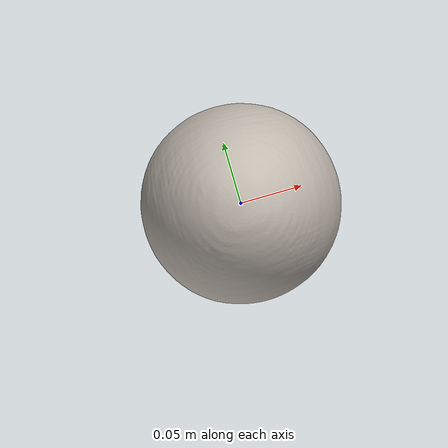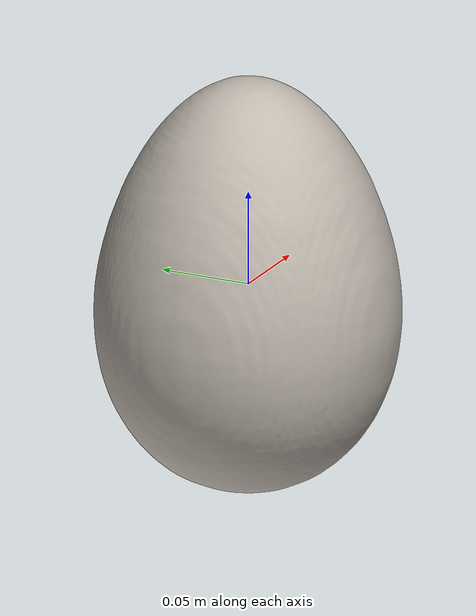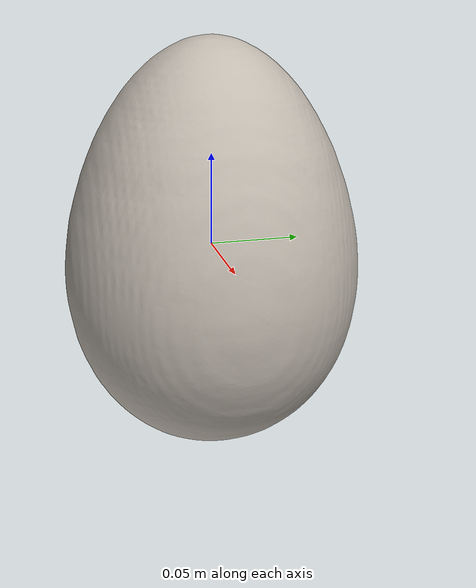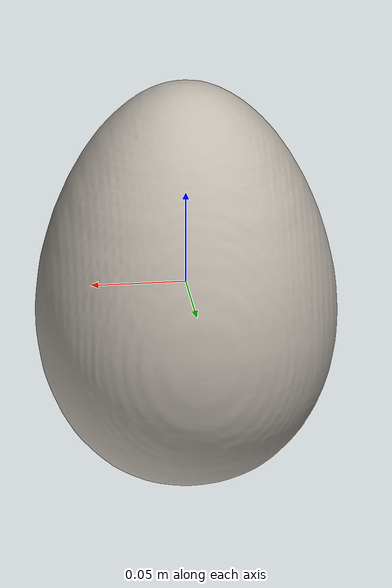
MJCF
<mujoco model="fork_11">
  <asset>
    <mesh file="visual/model_normalized_0.obj" name="model_normalized_0_vis" scale="0.22000000000000003 0.22000000000000003 0.22000000000000003" refquat="0.7071067811865475 0.0 0.0 0.7071067811865476"/>
    <mesh file="visual/model_normalized_1.obj" name="model_normalized_1_vis" scale="0.22000000000000003 0.22000000000000003 0.22000000000000003" refquat="0.7071067811865475 0.0 0.0 0.7071067811865476"/>
    <mesh file="collision/model_normalized_collision_22.obj" name="model_normalized_collision_22._coll" scale="0.22000000000000003 0.22000000000000003 0.22000000000000003" refquat="0.7071067811865475 0.0 0.0 0.7071067811865476"/>
    <mesh file="collision/model_normalized_collision_23.obj" name="model_normalized_collision_23._coll" scale="0.22000000000000003 0.22000000000000003 0.22000000000000003" refquat="0.7071067811865475 0.0 0.0 0.7071067811865476"/>
    <mesh file="collision/model_normalized_collision_21.obj" name="model_normalized_collision_21._coll" scale="0.22000000000000003 0.22000000000000003 0.22000000000000003" refquat="0.7071067811865475 0.0 0.0 0.7071067811865476"/>
    <mesh file="collision/model_normalized_collision_20.obj" name="model_normalized_collision_20._coll" scale="0.22000000000000003 0.22000000000000003 0.22000000000000003" refquat="0.7071067811865475 0.0 0.0 0.7071067811865476"/>
    <mesh file="collision/model_normalized_collision_24.obj" name="model_normalized_collision_24._coll" scale="0.22000000000000003 0.22000000000000003 0.22000000000000003" refquat="0.7071067811865475 0.0 0.0 0.7071067811865476"/>
    <mesh file="collision/model_normalized_collision_30.obj" name="model_normalized_collision_30._coll" scale="0.22000000000000003 0.22000000000000003 0.22000000000000003" refquat="0.7071067811865475 0.0 0.0 0.7071067811865476"/>
    <mesh file="collision/model_normalized_collision_18.obj" name="model_normalized_collision_18._coll" scale="0.22000000000000003 0.22000000000000003 0.22000000000000003" refquat="0.7071067811865475 0.0 0.0 0.7071067811865476"/>
    <mesh file="collision/model_normalized_collision_19.obj" name="model_normalized_collision_19._coll" scale="0.22000000000000003 0.22000000000000003 0.22000000000000003" refquat="0.7071067811865475 0.0 0.0 0.7071067811865476"/>
    <mesh file="collision/model_normalized_collision_31.obj" name="model_normalized_collision_31._coll" scale="0.22000000000000003 0.22000000000000003 0.22000000000000003" refquat="0.7071067811865475 0.0 0.0 0.7071067811865476"/>
    <mesh file="collision/model_normalized_collision_25.obj" name="model_normalized_collision_25._coll" scale="0.22000000000000003 0.22000000000000003 0.22000000000000003" refquat="0.7071067811865475 0.0 0.0 0.7071067811865476"/>
    <mesh file="collision/model_normalized_collision_27.obj" name="model_normalized_collision_27._coll" scale="0.22000000000000003 0.22000000000000003 0.22000000000000003" refquat="0.7071067811865475 0.0 0.0 0.7071067811865476"/>
    <mesh file="collision/model_normalized_collision_26.obj" name="model_normalized_collision_26._coll" scale="0.22000000000000003 0.22000000000000003 0.22000000000000003" refquat="0.7071067811865475 0.0 0.0 0.7071067811865476"/>
    <mesh file="collision/model_normalized_collision_9.obj" name="model_normalized_collision_9._coll" scale="0.22000000000000003 0.22000000000000003 0.22000000000000003" refquat="0.7071067811865475 0.0 0.0 0.7071067811865476"/>
    <mesh file="collision/model_normalized_collision_8.obj" name="model_normalized_collision_8._coll" scale="0.22000000000000003 0.22000000000000003 0.22000000000000003" refquat="0.7071067811865475 0.0 0.0 0.7071067811865476"/>
    <mesh file="collision/model_normalized_collision_6.obj" name="model_normalized_collision_6._coll" scale="0.22000000000000003 0.22000000000000003 0.22000000000000003" refquat="0.7071067811865475 0.0 0.0 0.7071067811865476"/>
    <mesh file="collision/model_normalized_collision_7.obj" name="model_normalized_collision_7._coll" scale="0.22000000000000003 0.22000000000000003 0.22000000000000003" refquat="0.7071067811865475 0.0 0.0 0.7071067811865476"/>
    <mesh file="collision/model_normalized_collision_5.obj" name="model_normalized_collision_5._coll" scale="0.22000000000000003 0.22000000000000003 0.22000000000000003" refquat="0.7071067811865475 0.0 0.0 0.7071067811865476"/>
    <mesh file="collision/model_normalized_collision_4.obj" name="model_normalized_collision_4._coll" scale="0.22000000000000003 0.22000000000000003 0.22000000000000003" refquat="0.7071067811865475 0.0 0.0 0.7071067811865476"/>
    <mesh file="collision/model_normalized_collision_0.obj" name="model_normalized_collision_0._coll" scale="0.22000000000000003 0.22000000000000003 0.22000000000000003" refquat="0.7071067811865475 0.0 0.0 0.7071067811865476"/>
    <mesh file="collision/model_normalized_collision_1.obj" name="model_normalized_collision_1._coll" scale="0.22000000000000003 0.22000000000000003 0.22000000000000003" refquat="0.7071067811865475 0.0 0.0 0.7071067811865476"/>
    <mesh file="collision/model_normalized_collision_3.obj" name="model_normalized_collision_3._coll" scale="0.22000000000000003 0.22000000000000003 0.22000000000000003" refquat="0.7071067811865475 0.0 0.0 0.7071067811865476"/>
    <mesh file="collision/model_normalized_collision_2.obj" name="model_normalized_collision_2._coll" scale="0.22000000000000003 0.22000000000000003 0.22000000000000003" refquat="0.7071067811865475 0.0 0.0 0.7071067811865476"/>
    <mesh file="collision/model_normalized_collision_17.obj" name="model_normalized_collision_17._coll" scale="0.22000000000000003 0.22000000000000003 0.22000000000000003" refquat="0.7071067811865475 0.0 0.0 0.7071067811865476"/>
    <mesh file="collision/model_normalized_collision_16.obj" name="model_normalized_collision_16._coll" scale="0.22000000000000003 0.22000000000000003 0.22000000000000003" refquat="0.7071067811865475 0.0 0.0 0.7071067811865476"/>
    <mesh file="collision/model_normalized_collision_28.obj" name="model_normalized_collision_28._coll" scale="0.22000000000000003 0.22000000000000003 0.22000000000000003" refquat="0.7071067811865475 0.0 0.0 0.7071067811865476"/>
    <mesh file="collision/model_normalized_collision_14.obj" name="model_normalized_collision_14._coll" scale="0.22000000000000003 0.22000000000000003 0.22000000000000003" refquat="0.7071067811865475 0.0 0.0 0.7071067811865476"/>
    <mesh file="collision/model_normalized_collision_15.obj" name="model_normalized_collision_15._coll" scale="0.22000000000000003 0.22000000000000003 0.22000000000000003" refquat="0.7071067811865475 0.0 0.0 0.7071067811865476"/>
    <mesh file="collision/model_normalized_collision_29.obj" name="model_normalized_collision_29._coll" scale="0.22000000000000003 0.22000000000000003 0.22000000000000003" refquat="0.7071067811865475 0.0 0.0 0.7071067811865476"/>
    <mesh file="collision/model_normalized_collision_11.obj" name="model_normalized_collision_11._coll" scale="0.22000000000000003 0.22000000000000003 0.22000000000000003" refquat="0.7071067811865475 0.0 0.0 0.7071067811865476"/>
    <mesh file="collision/model_normalized_collision_10.obj" name="model_normalized_collision_10._coll" scale="0.22000000000000003 0.22000000000000003 0.22000000000000003" refquat="0.7071067811865475 0.0 0.0 0.7071067811865476"/>
    <mesh file="collision/model_normalized_collision_12.obj" name="model_normalized_collision_12._coll" scale="0.22000000000000003 0.22000000000000003 0.22000000000000003" refquat="0.7071067811865475 0.0 0.0 0.7071067811865476"/>
    <mesh file="collision/model_normalized_collision_13.obj" name="model_normalized_collision_13._coll" scale="0.22000000000000003 0.22000000000000003 0.22000000000000003" refquat="0.7071067811865475 0.0 0.0 0.7071067811865476"/>
    <texture type="2d" name="image3" file="visual/image3.png"/>
    <texture type="2d" name="image0" file="visual/image0.png"/>
    <material name="Handle" texture="image3" specular="0.9" shininess="0.85"/>
    <material name="Prongs" texture="image0" specular="0.9" shininess="0.85"/>
  </asset>
  <custom><text name="material_gt" data="metal"/></custom>
  <default>
    <default class="region">
      <geom group="1" conaffinity="0" contype="0" rgba="0 1 0 0"/>
    </default>
  </default>
  <worldbody>
    <body>
      <body name="object">
        <geom solimp="0.998 0.998 0.001" solref="0.001 1" density="100" friction="0.95 0.3 0.1" type="mesh" mesh="model_normalized_0_vis" conaffinity="0" contype="0" group="1" material="Handle"/>
        <geom solimp="0.998 0.998 0.001" solref="0.001 1" density="100" friction="0.95 0.3 0.1" type="mesh" mesh="model_normalized_1_vis" conaffinity="0" contype="0" group="1" material="Prongs"/>
        <geom solimp="0.998 0.998 0.001" solref="0.001 1" density="100" friction="0.95 0.3 0.1" type="mesh" mesh="model_normalized_collision_22._coll" group="0" rgba="0.8 0.8 0.8 0.0"/>
        <geom solimp="0.998 0.998 0.001" solref="0.001 1" density="100" friction="0.95 0.3 0.1" type="mesh" mesh="model_normalized_collision_23._coll" group="0" rgba="0.8 0.8 0.8 0.0"/>
        <geom solimp="0.998 0.998 0.001" solref="0.001 1" density="100" friction="0.95 0.3 0.1" type="mesh" mesh="model_normalized_collision_21._coll" group="0" rgba="0.8 0.8 0.8 0.0"/>
        <geom solimp="0.998 0.998 0.001" solref="0.001 1" density="100" friction="0.95 0.3 0.1" type="mesh" mesh="model_normalized_collision_20._coll" group="0" rgba="0.8 0.8 0.8 0.0"/>
        <geom solimp="0.998 0.998 0.001" solref="0.001 1" density="100" friction="0.95 0.3 0.1" type="mesh" mesh="model_normalized_collision_24._coll" group="0" rgba="0.8 0.8 0.8 0.0"/>
        <geom solimp="0.998 0.998 0.001" solref="0.001 1" density="100" friction="0.95 0.3 0.1" type="mesh" mesh="model_normalized_collision_30._coll" group="0" rgba="0.8 0.8 0.8 0.0"/>
        <geom solimp="0.998 0.998 0.001" solref="0.001 1" density="100" friction="0.95 0.3 0.1" type="mesh" mesh="model_normalized_collision_18._coll" group="0" rgba="0.8 0.8 0.8 0.0"/>
        <geom solimp="0.998 0.998 0.001" solref="0.001 1" density="100" friction="0.95 0.3 0.1" type="mesh" mesh="model_normalized_collision_19._coll" group="0" rgba="0.8 0.8 0.8 0.0"/>
        <geom solimp="0.998 0.998 0.001" solref="0.001 1" density="100" friction="0.95 0.3 0.1" type="mesh" mesh="model_normalized_collision_31._coll" group="0" rgba="0.8 0.8 0.8 0.0"/>
        <geom solimp="0.998 0.998 0.001" solref="0.001 1" density="100" friction="0.95 0.3 0.1" type="mesh" mesh="model_normalized_collision_25._coll" group="0" rgba="0.8 0.8 0.8 0.0"/>
        <geom solimp="0.998 0.998 0.001" solref="0.001 1" density="100" friction="0.95 0.3 0.1" type="mesh" mesh="model_normalized_collision_27._coll" group="0" rgba="0.8 0.8 0.8 0.0"/>
        <geom solimp="0.998 0.998 0.001" solref="0.001 1" density="100" friction="0.95 0.3 0.1" type="mesh" mesh="model_normalized_collision_26._coll" group="0" rgba="0.8 0.8 0.8 0.0"/>
        <geom solimp="0.998 0.998 0.001" solref="0.001 1" density="100" friction="0.95 0.3 0.1" type="mesh" mesh="model_normalized_collision_9._coll" group="0" rgba="0.8 0.8 0.8 0.0"/>
        <geom solimp="0.998 0.998 0.001" solref="0.001 1" density="100" friction="0.95 0.3 0.1" type="mesh" mesh="model_normalized_collision_8._coll" group="0" rgba="0.8 0.8 0.8 0.0"/>
        <geom solimp="0.998 0.998 0.001" solref="0.001 1" density="100" friction="0.95 0.3 0.1" type="mesh" mesh="model_normalized_collision_6._coll" group="0" rgba="0.8 0.8 0.8 0.0"/>
        <geom solimp="0.998 0.998 0.001" solref="0.001 1" density="100" friction="0.95 0.3 0.1" type="mesh" mesh="model_normalized_collision_7._coll" group="0" rgba="0.8 0.8 0.8 0.0"/>
        <geom solimp="0.998 0.998 0.001" solref="0.001 1" density="100" friction="0.95 0.3 0.1" type="mesh" mesh="model_normalized_collision_5._coll" group="0" rgba="0.8 0.8 0.8 0.0"/>
        <geom solimp="0.998 0.998 0.001" solref="0.001 1" density="100" friction="0.95 0.3 0.1" type="mesh" mesh="model_normalized_collision_4._coll" group="0" rgba="0.8 0.8 0.8 0.0"/>
        <geom solimp="0.998 0.998 0.001" solref="0.001 1" density="100" friction="0.95 0.3 0.1" type="mesh" mesh="model_normalized_collision_0._coll" group="0" rgba="0.8 0.8 0.8 0.0"/>
        <geom solimp="0.998 0.998 0.001" solref="0.001 1" density="100" friction="0.95 0.3 0.1" type="mesh" mesh="model_normalized_collision_1._coll" group="0" rgba="0.8 0.8 0.8 0.0"/>
        <geom solimp="0.998 0.998 0.001" solref="0.001 1" density="100" friction="0.95 0.3 0.1" type="mesh" mesh="model_normalized_collision_3._coll" group="0" rgba="0.8 0.8 0.8 0.0"/>
        <geom solimp="0.998 0.998 0.001" solref="0.001 1" density="100" friction="0.95 0.3 0.1" type="mesh" mesh="model_normalized_collision_2._coll" group="0" rgba="0.8 0.8 0.8 0.0"/>
        <geom solimp="0.998 0.998 0.001" solref="0.001 1" density="100" friction="0.95 0.3 0.1" type="mesh" mesh="model_normalized_collision_17._coll" group="0" rgba="0.8 0.8 0.8 0.0"/>
        <geom solimp="0.998 0.998 0.001" solref="0.001 1" density="100" friction="0.95 0.3 0.1" type="mesh" mesh="model_normalized_collision_16._coll" group="0" rgba="0.8 0.8 0.8 0.0"/>
        <geom solimp="0.998 0.998 0.001" solref="0.001 1" density="100" friction="0.95 0.3 0.1" type="mesh" mesh="model_normalized_collision_28._coll" group="0" rgba="0.8 0.8 0.8 0.0"/>
        <geom solimp="0.998 0.998 0.001" solref="0.001 1" density="100" friction="0.95 0.3 0.1" type="mesh" mesh="model_normalized_collision_14._coll" group="0" rgba="0.8 0.8 0.8 0.0"/>
        <geom solimp="0.998 0.998 0.001" solref="0.001 1" density="100" friction="0.95 0.3 0.1" type="mesh" mesh="model_normalized_collision_15._coll" group="0" rgba="0.8 0.8 0.8 0.0"/>
        <geom solimp="0.998 0.998 0.001" solref="0.001 1" density="100" friction="0.95 0.3 0.1" type="mesh" mesh="model_normalized_collision_29._coll" group="0" rgba="0.8 0.8 0.8 0.0"/>
        <geom solimp="0.998 0.998 0.001" solref="0.001 1" density="100" friction="0.95 0.3 0.1" type="mesh" mesh="model_normalized_collision_11._coll" group="0" rgba="0.8 0.8 0.8 0.0"/>
        <geom solimp="0.998 0.998 0.001" solref="0.001 1" density="100" friction="0.95 0.3 0.1" type="mesh" mesh="model_normalized_collision_10._coll" group="0" rgba="0.8 0.8 0.8 0.0"/>
        <geom solimp="0.998 0.998 0.001" solref="0.001 1" density="100" friction="0.95 0.3 0.1" type="mesh" mesh="model_normalized_collision_12._coll" group="0" rgba="0.8 0.8 0.8 0.0"/>
        <geom solimp="0.998 0.998 0.001" solref="0.001 1" density="100" friction="0.95 0.3 0.1" type="mesh" mesh="model_normalized_collision_13._coll" group="0" rgba="0.8 0.8 0.8 0.0"/>
        <geom class="region" name="reg_bbox" type="box" pos="-3.248520000000019e-05 -5.4475300000001454e-05 -0.00012004299999999937" size="0.017827488800000003 0.1097381758 0.013192671800000003"/>
      </body>
    </body>
  </worldbody>
</mujoco>
